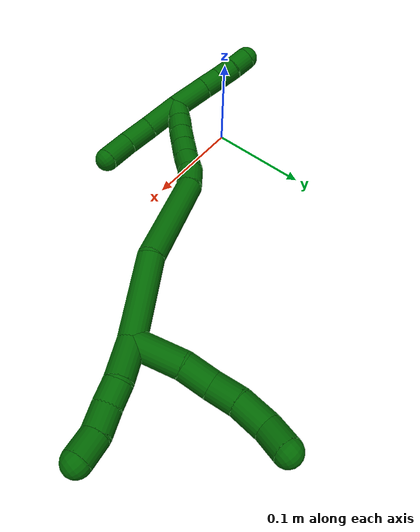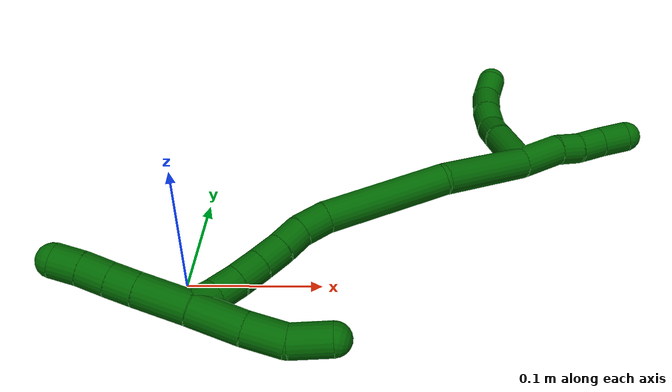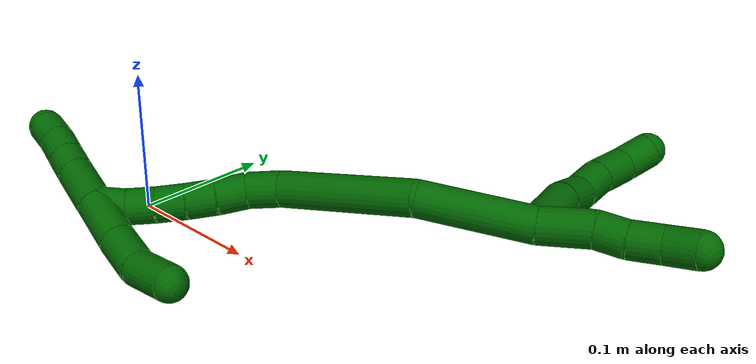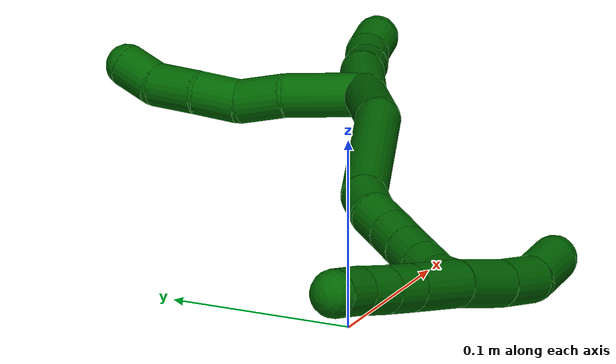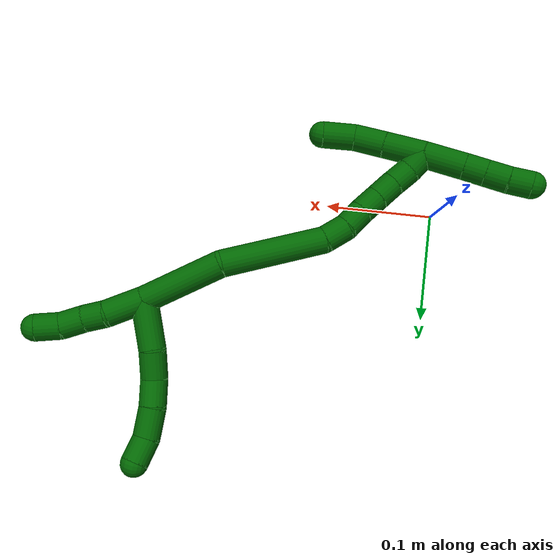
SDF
<sdf version="1.7">
 <world name="default">
  <model name="6">
   <static>0</static>
   <link name="6">
    <collision name="collision-cylinder-e_1_2_8">
     <pose>-0.009755 0.018397 0.009539 -1.09247 -0.439989 0.270229</pose>
     <geometry><cylinder><radius>0.0125</radius><length>0.045808</length></cylinder></geometry>
     <surface>
      <friction><ode><mu>1.16</mu><mu2>1.16</mu2><slip1>0</slip1><slip2>0</slip2></ode></friction>
      <contact><ode><kp>1e+06</kp><kd>1</kd><max_vel>0</max_vel><min_depth>0.001</min_depth></ode></contact>
     </surface>
    </collision>
    <visual name="visual-cylinder-e_1_2_8">
     <pose>-0.009755 0.018397 0.009539 -1.09247 -0.439989 0.270229</pose>
     <geometry><cylinder><radius>0.0125</radius><length>0.045808</length></cylinder></geometry>
     <material><ambient>0 0.392157 0.003922 1</ambient></material>
    </visual>
    <collision name="collision-cylinder-e_2_8_9">
     <pose>-0.027087 0.047462 0.022631 -1.24921 -0.5929 0.433471</pose>
     <geometry><cylinder><radius>0.0125</radius><length>0.027119</length></cylinder></geometry>
     <surface>
      <friction><ode><mu>1.16</mu><mu2>1.16</mu2><slip1>0</slip1><slip2>0</slip2></ode></friction>
      <contact><ode><kp>1e+06</kp><kd>1</kd><max_vel>0</max_vel><min_depth>0.001</min_depth></ode></contact>
     </surface>
    </collision>
    <visual name="visual-cylinder-e_2_8_9">
     <pose>-0.027087 0.047462 0.022631 -1.24921 -0.5929 0.433471</pose>
     <geometry><cylinder><radius>0.0125</radius><length>0.027119</length></cylinder></geometry>
     <material><ambient>0 0.392157 0.003922 1</ambient></material>
    </visual>
    <collision name="collision-cylinder-e_3_9_10">
     <pose>-0.03805 0.069907 0.029619 -1.28711 -0.269285 0.202521</pose>
     <geometry><cylinder><radius>0.0125</radius><length>0.025451</length></cylinder></geometry>
     <surface>
      <friction><ode><mu>1.16</mu><mu2>1.16</mu2><slip1>0</slip1><slip2>0</slip2></ode></friction>
      <contact><ode><kp>1e+06</kp><kd>1</kd><max_vel>0</max_vel><min_depth>0.001</min_depth></ode></contact>
     </surface>
    </collision>
    <visual name="visual-cylinder-e_3_9_10">
     <pose>-0.03805 0.069907 0.029619 -1.28711 -0.269285 0.202521</pose>
     <geometry><cylinder><radius>0.0125</radius><length>0.025451</length></cylinder></geometry>
     <material><ambient>0 0.392157 0.003922 1</ambient></material>
    </visual>
    <collision name="collision-cylinder-e_4_10_11">
     <pose>-0.045901 0.094886 0.034528 -1.45948 -0.324348 0.29062</pose>
     <geometry><cylinder><radius>0.0125</radius><length>0.028029</length></cylinder></geometry>
     <surface>
      <friction><ode><mu>1.16</mu><mu2>1.16</mu2><slip1>0</slip1><slip2>0</slip2></ode></friction>
      <contact><ode><kp>1e+06</kp><kd>1</kd><max_vel>0</max_vel><min_depth>0.001</min_depth></ode></contact>
     </surface>
    </collision>
    <visual name="visual-cylinder-e_4_10_11">
     <pose>-0.045901 0.094886 0.034528 -1.45948 -0.324348 0.29062</pose>
     <geometry><cylinder><radius>0.0125</radius><length>0.028029</length></cylinder></geometry>
     <material><ambient>0 0.392157 0.003922 1</ambient></material>
    </visual>
    <collision name="collision-cylinder-e_5_11_6">
     <pose>-0.050806 0.11985 0.03522 -1.63735 -0.037129 0.039685</pose>
     <geometry><cylinder><radius>0.0125</radius><length>0.023593</length></cylinder></geometry>
     <surface>
      <friction><ode><mu>1.16</mu><mu2>1.16</mu2><slip1>0</slip1><slip2>0</slip2></ode></friction>
      <contact><ode><kp>1e+06</kp><kd>1</kd><max_vel>0</max_vel><min_depth>0.001</min_depth></ode></contact>
     </surface>
    </collision>
    <visual name="visual-cylinder-e_5_11_6">
     <pose>-0.050806 0.11985 0.03522 -1.63735 -0.037129 0.039685</pose>
     <geometry><cylinder><radius>0.0125</radius><length>0.023593</length></cylinder></geometry>
     <material><ambient>0 0.392157 0.003922 1</ambient></material>
    </visual>
    <collision name="collision-cylinder-e_1_2_12">
     <pose>-3e-05 0.011544 -0.013617 -2.4384 -0.001672 0.004557</pose>
     <geometry><cylinder><radius>0.0125</radius><length>0.035704</length></cylinder></geometry>
     <surface>
      <friction><ode><mu>1.16</mu><mu2>1.16</mu2><slip1>0</slip1><slip2>0</slip2></ode></friction>
      <contact><ode><kp>1e+06</kp><kd>1</kd><max_vel>0</max_vel><min_depth>0.001</min_depth></ode></contact>
     </surface>
    </collision>
    <visual name="visual-cylinder-e_1_2_12">
     <pose>-3e-05 0.011544 -0.013617 -2.4384 -0.001672 0.004557</pose>
     <geometry><cylinder><radius>0.0125</radius><length>0.035704</length></cylinder></geometry>
     <material><ambient>0 0.392157 0.003922 1</ambient></material>
    </visual>
    <collision name="collision-cylinder-e_2_12_13">
     <pose>-0.00124 0.027715 -0.036033 -2.65745 -0.118216 0.47046</pose>
     <geometry><cylinder><radius>0.0125</radius><length>0.020022</length></cylinder></geometry>
     <surface>
      <friction><ode><mu>1.16</mu><mu2>1.16</mu2><slip1>0</slip1><slip2>0</slip2></ode></friction>
      <contact><ode><kp>1e+06</kp><kd>1</kd><max_vel>0</max_vel><min_depth>0.001</min_depth></ode></contact>
     </surface>
    </collision>
    <visual name="visual-cylinder-e_2_12_13">
     <pose>-0.00124 0.027715 -0.036033 -2.65745 -0.118216 0.47046</pose>
     <geometry><cylinder><radius>0.0125</radius><length>0.020022</length></cylinder></geometry>
     <material><ambient>0 0.392157 0.003922 1</ambient></material>
    </visual>
    <collision name="collision-cylinder-e_3_13_14">
     <pose>-0.002623 0.038766 -0.053772 -2.51859 -0.018317 0.056876</pose>
     <geometry><cylinder><radius>0.0125</radius><length>0.022023</length></cylinder></geometry>
     <surface>
      <friction><ode><mu>1.16</mu><mu2>1.16</mu2><slip1>0</slip1><slip2>0</slip2></ode></friction>
      <contact><ode><kp>1e+06</kp><kd>1</kd><max_vel>0</max_vel><min_depth>0.001</min_depth></ode></contact>
     </surface>
    </collision>
    <visual name="visual-cylinder-e_3_13_14">
     <pose>-0.002623 0.038766 -0.053772 -2.51859 -0.018317 0.056876</pose>
     <geometry><cylinder><radius>0.0125</radius><length>0.022023</length></cylinder></geometry>
     <material><ambient>0 0.392157 0.003922 1</ambient></material>
    </visual>
    <collision name="collision-cylinder-e_4_14_5">
     <pose>-0.00086 0.049952 -0.072575 -2.69169 0.177455 -0.741581</pose>
     <geometry><cylinder><radius>0.0125</radius><length>0.022252</length></cylinder></geometry>
     <surface>
      <friction><ode><mu>1.16</mu><mu2>1.16</mu2><slip1>0</slip1><slip2>0</slip2></ode></friction>
      <contact><ode><kp>1e+06</kp><kd>1</kd><max_vel>0</max_vel><min_depth>0.001</min_depth></ode></contact>
     </surface>
    </collision>
    <visual name="visual-cylinder-e_4_14_5">
     <pose>-0.00086 0.049952 -0.072575 -2.69169 0.177455 -0.741581</pose>
     <geometry><cylinder><radius>0.0125</radius><length>0.022252</length></cylinder></geometry>
     <material><ambient>0 0.392157 0.003922 1</ambient></material>
    </visual>
    <collision name="collision-cylinder-e_1_2_15">
     <pose>0.007849 -0.023624 0.02937 0.677383 0.205298 0.072543</pose>
     <geometry><cylinder><radius>0.0125</radius><length>0.077002</length></cylinder></geometry>
     <surface>
      <friction><ode><mu>1.16</mu><mu2>1.16</mu2><slip1>0</slip1><slip2>0</slip2></ode></friction>
      <contact><ode><kp>1e+06</kp><kd>1</kd><max_vel>0</max_vel><min_depth>0.001</min_depth></ode></contact>
     </surface>
    </collision>
    <visual name="visual-cylinder-e_1_2_15">
     <pose>0.007849 -0.023624 0.02937 0.677383 0.205298 0.072543</pose>
     <geometry><cylinder><radius>0.0125</radius><length>0.077002</length></cylinder></geometry>
     <material><ambient>0 0.392157 0.003922 1</ambient></material>
    </visual>
    <collision name="collision-cylinder-e_2_15_16">
     <pose>0.011062 -0.074629 0.098204 0.606583 -0.096215 -0.030131</pose>
     <geometry><cylinder><radius>0.0125</radius><length>0.096511</length></cylinder></geometry>
     <surface>
      <friction><ode><mu>1.16</mu><mu2>1.16</mu2><slip1>0</slip1><slip2>0</slip2></ode></friction>
      <contact><ode><kp>1e+06</kp><kd>1</kd><max_vel>0</max_vel><min_depth>0.001</min_depth></ode></contact>
     </surface>
    </collision>
    <visual name="visual-cylinder-e_2_15_16">
     <pose>0.011062 -0.074629 0.098204 0.606583 -0.096215 -0.030131</pose>
     <geometry><cylinder><radius>0.0125</radius><length>0.096511</length></cylinder></geometry>
     <material><ambient>0 0.392157 0.003922 1</ambient></material>
    </visual>
    <collision name="collision-cylinder-e_3_16_17">
     <pose>0.006773 -0.111033 0.14526 0.871233 0.029445 0.013706</pose>
     <geometry><cylinder><radius>0.0125</radius><length>0.023594</length></cylinder></geometry>
     <surface>
      <friction><ode><mu>1.16</mu><mu2>1.16</mu2><slip1>0</slip1><slip2>0</slip2></ode></friction>
      <contact><ode><kp>1e+06</kp><kd>1</kd><max_vel>0</max_vel><min_depth>0.001</min_depth></ode></contact>
     </surface>
    </collision>
    <visual name="visual-cylinder-e_3_16_17">
     <pose>0.006773 -0.111033 0.14526 0.871233 0.029445 0.013706</pose>
     <geometry><cylinder><radius>0.0125</radius><length>0.023594</length></cylinder></geometry>
     <material><ambient>0 0.392157 0.003922 1</ambient></material>
    </visual>
    <collision name="collision-cylinder-e_4_17_18">
     <pose>0.007721 -0.129573 0.157273 1.13601 0.057163 0.036485</pose>
     <geometry><cylinder><radius>0.0125</radius><length>0.021022</length></cylinder></geometry>
     <surface>
      <friction><ode><mu>1.16</mu><mu2>1.16</mu2><slip1>0</slip1><slip2>0</slip2></ode></friction>
      <contact><ode><kp>1e+06</kp><kd>1</kd><max_vel>0</max_vel><min_depth>0.001</min_depth></ode></contact>
     </surface>
    </collision>
    <visual name="visual-cylinder-e_4_17_18">
     <pose>0.007721 -0.129573 0.157273 1.13601 0.057163 0.036485</pose>
     <geometry><cylinder><radius>0.0125</radius><length>0.021022</length></cylinder></geometry>
     <material><ambient>0 0.392157 0.003922 1</ambient></material>
    </visual>
    <collision name="collision-cylinder-e_5_18_19">
     <pose>0.0091 -0.148123 0.166763 1.05932 0.074967 0.043904</pose>
     <geometry><cylinder><radius>0.0125</radius><length>0.020775</length></cylinder></geometry>
     <surface>
      <friction><ode><mu>1.16</mu><mu2>1.16</mu2><slip1>0</slip1><slip2>0</slip2></ode></friction>
      <contact><ode><kp>1e+06</kp><kd>1</kd><max_vel>0</max_vel><min_depth>0.001</min_depth></ode></contact>
     </surface>
    </collision>
    <visual name="visual-cylinder-e_5_18_19">
     <pose>0.0091 -0.148123 0.166763 1.05932 0.074967 0.043904</pose>
     <geometry><cylinder><radius>0.0125</radius><length>0.020775</length></cylinder></geometry>
     <material><ambient>0 0.392157 0.003922 1</ambient></material>
    </visual>
    <collision name="collision-cylinder-e_6_19_20">
     <pose>0.010986 -0.166056 0.176936 1.05021 0.107623 0.062392</pose>
     <geometry><cylinder><radius>0.0125</radius><length>0.020638</length></cylinder></geometry>
     <surface>
      <friction><ode><mu>1.16</mu><mu2>1.16</mu2><slip1>0</slip1><slip2>0</slip2></ode></friction>
      <contact><ode><kp>1e+06</kp><kd>1</kd><max_vel>0</max_vel><min_depth>0.001</min_depth></ode></contact>
     </surface>
    </collision>
    <visual name="visual-cylinder-e_6_19_20">
     <pose>0.010986 -0.166056 0.176936 1.05021 0.107623 0.062392</pose>
     <geometry><cylinder><radius>0.0125</radius><length>0.020638</length></cylinder></geometry>
     <material><ambient>0 0.392157 0.003922 1</ambient></material>
    </visual>
    <collision name="collision-cylinder-e_7_20_21">
     <pose>0.01339 -0.183439 0.187527 0.996597 0.127508 0.069443</pose>
     <geometry><cylinder><radius>0.0125</radius><length>0.020372</length></cylinder></geometry>
     <surface>
      <friction><ode><mu>1.16</mu><mu2>1.16</mu2><slip1>0</slip1><slip2>0</slip2></ode></friction>
      <contact><ode><kp>1e+06</kp><kd>1</kd><max_vel>0</max_vel><min_depth>0.001</min_depth></ode></contact>
     </surface>
    </collision>
    <visual name="visual-cylinder-e_7_20_21">
     <pose>0.01339 -0.183439 0.187527 0.996597 0.127508 0.069443</pose>
     <geometry><cylinder><radius>0.0125</radius><length>0.020372</length></cylinder></geometry>
     <material><ambient>0 0.392157 0.003922 1</ambient></material>
    </visual>
    <collision name="collision-cylinder-e_8_21_1">
     <pose>0.018187 -0.199982 0.197876 1.02811 0.356202 0.202603</pose>
     <geometry><cylinder><radius>0.0125</radius><length>0.020087</length></cylinder></geometry>
     <surface>
      <friction><ode><mu>1.16</mu><mu2>1.16</mu2><slip1>0</slip1><slip2>0</slip2></ode></friction>
      <contact><ode><kp>1e+06</kp><kd>1</kd><max_vel>0</max_vel><min_depth>0.001</min_depth></ode></contact>
     </surface>
    </collision>
    <visual name="visual-cylinder-e_8_21_1">
     <pose>0.018187 -0.199982 0.197876 1.02811 0.356202 0.202603</pose>
     <geometry><cylinder><radius>0.0125</radius><length>0.020087</length></cylinder></geometry>
     <material><ambient>0 0.392157 0.003922 1</ambient></material>
    </visual>
    <collision name="collision-cylinder-e_1_1_22">
     <pose>0.020365 -0.209487 0.183659 3.06605 -0.069119 -1.48201</pose>
     <geometry><cylinder><radius>0.0125</radius><length>0.038356</length></cylinder></geometry>
     <surface>
      <friction><ode><mu>1.16</mu><mu2>1.16</mu2><slip1>0</slip1><slip2>0</slip2></ode></friction>
      <contact><ode><kp>1e+06</kp><kd>1</kd><max_vel>0</max_vel><min_depth>0.001</min_depth></ode></contact>
     </surface>
    </collision>
    <visual name="visual-cylinder-e_1_1_22">
     <pose>0.020365 -0.209487 0.183659 3.06605 -0.069119 -1.48201</pose>
     <geometry><cylinder><radius>0.0125</radius><length>0.038356</length></cylinder></geometry>
     <material><ambient>0 0.392157 0.003922 1</ambient></material>
    </visual>
    <collision name="collision-cylinder-e_2_22_23">
     <pose>0.018815 -0.211276 0.149455 3.11873 -0.014919 -1.15633</pose>
     <geometry><cylinder><radius>0.0125</radius><length>0.030264</length></cylinder></geometry>
     <surface>
      <friction><ode><mu>1.16</mu><mu2>1.16</mu2><slip1>0</slip1><slip2>0</slip2></ode></friction>
      <contact><ode><kp>1e+06</kp><kd>1</kd><max_vel>0</max_vel><min_depth>0.001</min_depth></ode></contact>
     </surface>
    </collision>
    <visual name="visual-cylinder-e_2_22_23">
     <pose>0.018815 -0.211276 0.149455 3.11873 -0.014919 -1.15633</pose>
     <geometry><cylinder><radius>0.0125</radius><length>0.030264</length></cylinder></geometry>
     <material><ambient>0 0.392157 0.003922 1</ambient></material>
    </visual>
    <collision name="collision-cylinder-e_3_23_4">
     <pose>0.020656 -0.207418 0.119354 -2.86788 0.132094 -0.895488</pose>
     <geometry><cylinder><radius>0.0125</radius><length>0.03138</length></cylinder></geometry>
     <surface>
      <friction><ode><mu>1.16</mu><mu2>1.16</mu2><slip1>0</slip1><slip2>0</slip2></ode></friction>
      <contact><ode><kp>1e+06</kp><kd>1</kd><max_vel>0</max_vel><min_depth>0.001</min_depth></ode></contact>
     </surface>
    </collision>
    <visual name="visual-cylinder-e_3_23_4">
     <pose>0.020656 -0.207418 0.119354 -2.86788 0.132094 -0.895488</pose>
     <geometry><cylinder><radius>0.0125</radius><length>0.03138</length></cylinder></geometry>
     <material><ambient>0 0.392157 0.003922 1</ambient></material>
    </visual>
    <collision name="collision-cylinder-e_1_1_24">
     <pose>0.021842 -0.206599 0.221908 -0.07517 0.007926 -0.000298</pose>
     <geometry><cylinder><radius>0.0125</radius><length>0.038451</length></cylinder></geometry>
     <surface>
      <friction><ode><mu>1.16</mu><mu2>1.16</mu2><slip1>0</slip1><slip2>0</slip2></ode></friction>
      <contact><ode><kp>1e+06</kp><kd>1</kd><max_vel>0</max_vel><min_depth>0.001</min_depth></ode></contact>
     </surface>
    </collision>
    <visual name="visual-cylinder-e_1_1_24">
     <pose>0.021842 -0.206599 0.221908 -0.07517 0.007926 -0.000298</pose>
     <geometry><cylinder><radius>0.0125</radius><length>0.038451</length></cylinder></geometry>
     <material><ambient>0 0.392157 0.003922 1</ambient></material>
    </visual>
    <collision name="collision-cylinder-e_2_24_25">
     <pose>0.022049 -0.204217 0.251074 -0.093611 0.005453 -0.000255</pose>
     <geometry><cylinder><radius>0.0125</radius><length>0.02008</length></cylinder></geometry>
     <surface>
      <friction><ode><mu>1.16</mu><mu2>1.16</mu2><slip1>0</slip1><slip2>0</slip2></ode></friction>
      <contact><ode><kp>1e+06</kp><kd>1</kd><max_vel>0</max_vel><min_depth>0.001</min_depth></ode></contact>
     </surface>
    </collision>
    <visual name="visual-cylinder-e_2_24_25">
     <pose>0.022049 -0.204217 0.251074 -0.093611 0.005453 -0.000255</pose>
     <geometry><cylinder><radius>0.0125</radius><length>0.02008</length></cylinder></geometry>
     <material><ambient>0 0.392157 0.003922 1</ambient></material>
    </visual>
    <collision name="collision-cylinder-e_3_25_26">
     <pose>0.02241 -0.202144 0.271637 -0.106893 0.028783 -0.00154</pose>
     <geometry><cylinder><radius>0.0125</radius><length>0.021264</length></cylinder></geometry>
     <surface>
      <friction><ode><mu>1.16</mu><mu2>1.16</mu2><slip1>0</slip1><slip2>0</slip2></ode></friction>
      <contact><ode><kp>1e+06</kp><kd>1</kd><max_vel>0</max_vel><min_depth>0.001</min_depth></ode></contact>
     </surface>
    </collision>
    <visual name="visual-cylinder-e_3_25_26">
     <pose>0.02241 -0.202144 0.271637 -0.106893 0.028783 -0.00154</pose>
     <geometry><cylinder><radius>0.0125</radius><length>0.021264</length></cylinder></geometry>
     <material><ambient>0 0.392157 0.003922 1</ambient></material>
    </visual>
    <collision name="collision-cylinder-e_4_26_3">
     <pose>0.023063 -0.200907 0.2923 -0.01024 0.034382 -0.000176</pose>
     <geometry><cylinder><radius>0.0125</radius><length>0.020205</length></cylinder></geometry>
     <surface>
      <friction><ode><mu>1.16</mu><mu2>1.16</mu2><slip1>0</slip1><slip2>0</slip2></ode></friction>
      <contact><ode><kp>1e+06</kp><kd>1</kd><max_vel>0</max_vel><min_depth>0.001</min_depth></ode></contact>
     </surface>
    </collision>
    <visual name="visual-cylinder-e_4_26_3">
     <pose>0.023063 -0.200907 0.2923 -0.01024 0.034382 -0.000176</pose>
     <geometry><cylinder><radius>0.0125</radius><length>0.020205</length></cylinder></geometry>
     <material><ambient>0 0.392157 0.003922 1</ambient></material>
    </visual>
    <collision name="collision-sphere-3">
     <pose>0.02341 -0.200804 0.302396 0 -0 0</pose>
     <geometry><sphere><radius>0.0125</radius></sphere></geometry>
     <surface>
      <friction><ode><mu>1.16</mu><mu2>1.16</mu2><slip1>0</slip1><slip2>0</slip2></ode></friction>
      <contact><ode><kp>1e+06</kp><kd>1</kd><max_vel>0</max_vel><min_depth>0.001</min_depth></ode></contact>
     </surface>
    </collision>
    <visual name="visual-sphere-3">
     <pose>0.02341 -0.200804 0.302396 0 -0 0</pose>
     <geometry><sphere><radius>0.0125</radius></sphere></geometry>
     <material><ambient>0 0.392157 0.003922 1</ambient></material>
    </visual>
    <collision name="collision-sphere-26">
     <pose>0.022716 -0.20101 0.282203 0 -0 0</pose>
     <geometry><sphere><radius>0.0125</radius></sphere></geometry>
     <surface>
      <friction><ode><mu>1.16</mu><mu2>1.16</mu2><slip1>0</slip1><slip2>0</slip2></ode></friction>
      <contact><ode><kp>1e+06</kp><kd>1</kd><max_vel>0</max_vel><min_depth>0.001</min_depth></ode></contact>
     </surface>
    </collision>
    <visual name="visual-sphere-26">
     <pose>0.022716 -0.20101 0.282203 0 -0 0</pose>
     <geometry><sphere><radius>0.0125</radius></sphere></geometry>
     <material><ambient>0 0.392157 0.003922 1</ambient></material>
    </visual>
    <collision name="collision-sphere-25">
     <pose>0.022104 -0.203278 0.26107 0 -0 0</pose>
     <geometry><sphere><radius>0.0125</radius></sphere></geometry>
     <surface>
      <friction><ode><mu>1.16</mu><mu2>1.16</mu2><slip1>0</slip1><slip2>0</slip2></ode></friction>
      <contact><ode><kp>1e+06</kp><kd>1</kd><max_vel>0</max_vel><min_depth>0.001</min_depth></ode></contact>
     </surface>
    </collision>
    <visual name="visual-sphere-25">
     <pose>0.022104 -0.203278 0.26107 0 -0 0</pose>
     <geometry><sphere><radius>0.0125</radius></sphere></geometry>
     <material><ambient>0 0.392157 0.003922 1</ambient></material>
    </visual>
    <collision name="collision-sphere-24">
     <pose>0.021994 -0.205155 0.241078 0 -0 0</pose>
     <geometry><sphere><radius>0.0125</radius></sphere></geometry>
     <surface>
      <friction><ode><mu>1.16</mu><mu2>1.16</mu2><slip1>0</slip1><slip2>0</slip2></ode></friction>
      <contact><ode><kp>1e+06</kp><kd>1</kd><max_vel>0</max_vel><min_depth>0.001</min_depth></ode></contact>
     </surface>
    </collision>
    <visual name="visual-sphere-24">
     <pose>0.021994 -0.205155 0.241078 0 -0 0</pose>
     <geometry><sphere><radius>0.0125</radius></sphere></geometry>
     <material><ambient>0 0.392157 0.003922 1</ambient></material>
    </visual>
    <collision name="collision-sphere-4">
     <pose>0.022722 -0.203214 0.10438 0 -0 0</pose>
     <geometry><sphere><radius>0.0125</radius></sphere></geometry>
     <surface>
      <friction><ode><mu>1.16</mu><mu2>1.16</mu2><slip1>0</slip1><slip2>0</slip2></ode></friction>
      <contact><ode><kp>1e+06</kp><kd>1</kd><max_vel>0</max_vel><min_depth>0.001</min_depth></ode></contact>
     </surface>
    </collision>
    <visual name="visual-sphere-4">
     <pose>0.022722 -0.203214 0.10438 0 -0 0</pose>
     <geometry><sphere><radius>0.0125</radius></sphere></geometry>
     <material><ambient>0 0.392157 0.003922 1</ambient></material>
    </visual>
    <collision name="collision-sphere-23">
     <pose>0.018589 -0.211622 0.134329 0 -0 0</pose>
     <geometry><sphere><radius>0.0125</radius></sphere></geometry>
     <surface>
      <friction><ode><mu>1.16</mu><mu2>1.16</mu2><slip1>0</slip1><slip2>0</slip2></ode></friction>
      <contact><ode><kp>1e+06</kp><kd>1</kd><max_vel>0</max_vel><min_depth>0.001</min_depth></ode></contact>
     </surface>
    </collision>
    <visual name="visual-sphere-23">
     <pose>0.018589 -0.211622 0.134329 0 -0 0</pose>
     <geometry><sphere><radius>0.0125</radius></sphere></geometry>
     <material><ambient>0 0.392157 0.003922 1</ambient></material>
    </visual>
    <collision name="collision-sphere-22">
     <pose>0.019041 -0.21093 0.164581 0 -0 0</pose>
     <geometry><sphere><radius>0.0125</radius></sphere></geometry>
     <surface>
      <friction><ode><mu>1.16</mu><mu2>1.16</mu2><slip1>0</slip1><slip2>0</slip2></ode></friction>
      <contact><ode><kp>1e+06</kp><kd>1</kd><max_vel>0</max_vel><min_depth>0.001</min_depth></ode></contact>
     </surface>
    </collision>
    <visual name="visual-sphere-22">
     <pose>0.019041 -0.21093 0.164581 0 -0 0</pose>
     <geometry><sphere><radius>0.0125</radius></sphere></geometry>
     <material><ambient>0 0.392157 0.003922 1</ambient></material>
    </visual>
    <collision name="collision-sphere-1">
     <pose>0.02169 -0.208043 0.202737 0 -0 0</pose>
     <geometry><sphere><radius>0.0125</radius></sphere></geometry>
     <surface>
      <friction><ode><mu>1.16</mu><mu2>1.16</mu2><slip1>0</slip1><slip2>0</slip2></ode></friction>
      <contact><ode><kp>1e+06</kp><kd>1</kd><max_vel>0</max_vel><min_depth>0.001</min_depth></ode></contact>
     </surface>
    </collision>
    <visual name="visual-sphere-1">
     <pose>0.02169 -0.208043 0.202737 0 -0 0</pose>
     <geometry><sphere><radius>0.0125</radius></sphere></geometry>
     <material><ambient>0 0.392157 0.003922 1</ambient></material>
    </visual>
    <collision name="collision-sphere-21">
     <pose>0.014685 -0.191922 0.193014 0 -0 0</pose>
     <geometry><sphere><radius>0.0125</radius></sphere></geometry>
     <surface>
      <friction><ode><mu>1.16</mu><mu2>1.16</mu2><slip1>0</slip1><slip2>0</slip2></ode></friction>
      <contact><ode><kp>1e+06</kp><kd>1</kd><max_vel>0</max_vel><min_depth>0.001</min_depth></ode></contact>
     </surface>
    </collision>
    <visual name="visual-sphere-21">
     <pose>0.014685 -0.191922 0.193014 0 -0 0</pose>
     <geometry><sphere><radius>0.0125</radius></sphere></geometry>
     <material><ambient>0 0.392157 0.003922 1</ambient></material>
    </visual>
    <collision name="collision-sphere-6">
     <pose>-0.051244 0.131612 0.034436 0 -0 0</pose>
     <geometry><sphere><radius>0.0125</radius></sphere></geometry>
     <surface>
      <friction><ode><mu>1.16</mu><mu2>1.16</mu2><slip1>0</slip1><slip2>0</slip2></ode></friction>
      <contact><ode><kp>1e+06</kp><kd>1</kd><max_vel>0</max_vel><min_depth>0.001</min_depth></ode></contact>
     </surface>
    </collision>
    <visual name="visual-sphere-6">
     <pose>-0.051244 0.131612 0.034436 0 -0 0</pose>
     <geometry><sphere><radius>0.0125</radius></sphere></geometry>
     <material><ambient>0 0.392157 0.003922 1</ambient></material>
    </visual>
    <collision name="collision-sphere-11">
     <pose>-0.050368 0.108087 0.036004 0 -0 0</pose>
     <geometry><sphere><radius>0.0125</radius></sphere></geometry>
     <surface>
      <friction><ode><mu>1.16</mu><mu2>1.16</mu2><slip1>0</slip1><slip2>0</slip2></ode></friction>
      <contact><ode><kp>1e+06</kp><kd>1</kd><max_vel>0</max_vel><min_depth>0.001</min_depth></ode></contact>
     </surface>
    </collision>
    <visual name="visual-sphere-11">
     <pose>-0.050368 0.108087 0.036004 0 -0 0</pose>
     <geometry><sphere><radius>0.0125</radius></sphere></geometry>
     <material><ambient>0 0.392157 0.003922 1</ambient></material>
    </visual>
    <collision name="collision-sphere-10">
     <pose>-0.041435 0.081684 0.033053 0 -0 0</pose>
     <geometry><sphere><radius>0.0125</radius></sphere></geometry>
     <surface>
      <friction><ode><mu>1.16</mu><mu2>1.16</mu2><slip1>0</slip1><slip2>0</slip2></ode></friction>
      <contact><ode><kp>1e+06</kp><kd>1</kd><max_vel>0</max_vel><min_depth>0.001</min_depth></ode></contact>
     </surface>
    </collision>
    <visual name="visual-sphere-10">
     <pose>-0.041435 0.081684 0.033053 0 -0 0</pose>
     <geometry><sphere><radius>0.0125</radius></sphere></geometry>
     <material><ambient>0 0.392157 0.003922 1</ambient></material>
    </visual>
    <collision name="collision-sphere-9">
     <pose>-0.034664 0.058131 0.026186 0 -0 0</pose>
     <geometry><sphere><radius>0.0125</radius></sphere></geometry>
     <surface>
      <friction><ode><mu>1.16</mu><mu2>1.16</mu2><slip1>0</slip1><slip2>0</slip2></ode></friction>
      <contact><ode><kp>1e+06</kp><kd>1</kd><max_vel>0</max_vel><min_depth>0.001</min_depth></ode></contact>
     </surface>
    </collision>
    <visual name="visual-sphere-9">
     <pose>-0.034664 0.058131 0.026186 0 -0 0</pose>
     <geometry><sphere><radius>0.0125</radius></sphere></geometry>
     <material><ambient>0 0.392157 0.003922 1</ambient></material>
    </visual>
    <collision name="collision-sphere-2">
     <geometry><sphere><radius>0.0125</radius></sphere></geometry>
     <surface>
      <friction><ode><mu>1.16</mu><mu2>1.16</mu2><slip1>0</slip1><slip2>0</slip2></ode></friction>
      <contact><ode><kp>1e+06</kp><kd>1</kd><max_vel>0</max_vel><min_depth>0.001</min_depth></ode></contact>
     </surface>
    </collision>
    <visual name="visual-sphere-2">
     <geometry><sphere><radius>0.0125</radius></sphere></geometry>
     <material><ambient>0 0.392157 0.003922 1</ambient></material>
    </visual>
    <collision name="collision-sphere-19">
     <pose>0.009878 -0.157155 0.171833 0 -0 0</pose>
     <geometry><sphere><radius>0.0125</radius></sphere></geometry>
     <surface>
      <friction><ode><mu>1.16</mu><mu2>1.16</mu2><slip1>0</slip1><slip2>0</slip2></ode></friction>
      <contact><ode><kp>1e+06</kp><kd>1</kd><max_vel>0</max_vel><min_depth>0.001</min_depth></ode></contact>
     </surface>
    </collision>
    <visual name="visual-sphere-19">
     <pose>0.009878 -0.157155 0.171833 0 -0 0</pose>
     <geometry><sphere><radius>0.0125</radius></sphere></geometry>
     <material><ambient>0 0.392157 0.003922 1</ambient></material>
    </visual>
    <collision name="collision-sphere-8">
     <pose>-0.019511 0.036793 0.019077 0 -0 0</pose>
     <geometry><sphere><radius>0.0125</radius></sphere></geometry>
     <surface>
      <friction><ode><mu>1.16</mu><mu2>1.16</mu2><slip1>0</slip1><slip2>0</slip2></ode></friction>
      <contact><ode><kp>1e+06</kp><kd>1</kd><max_vel>0</max_vel><min_depth>0.001</min_depth></ode></contact>
     </surface>
    </collision>
    <visual name="visual-sphere-8">
     <pose>-0.019511 0.036793 0.019077 0 -0 0</pose>
     <geometry><sphere><radius>0.0125</radius></sphere></geometry>
     <material><ambient>0 0.392157 0.003922 1</ambient></material>
    </visual>
    <collision name="collision-sphere-12">
     <pose>-6e-05 0.023088 -0.027234 0 -0 0</pose>
     <geometry><sphere><radius>0.0125</radius></sphere></geometry>
     <surface>
      <friction><ode><mu>1.16</mu><mu2>1.16</mu2><slip1>0</slip1><slip2>0</slip2></ode></friction>
      <contact><ode><kp>1e+06</kp><kd>1</kd><max_vel>0</max_vel><min_depth>0.001</min_depth></ode></contact>
     </surface>
    </collision>
    <visual name="visual-sphere-12">
     <pose>-6e-05 0.023088 -0.027234 0 -0 0</pose>
     <geometry><sphere><radius>0.0125</radius></sphere></geometry>
     <material><ambient>0 0.392157 0.003922 1</ambient></material>
    </visual>
    <collision name="collision-sphere-13">
     <pose>-0.002421 0.032342 -0.044831 0 -0 0</pose>
     <geometry><sphere><radius>0.0125</radius></sphere></geometry>
     <surface>
      <friction><ode><mu>1.16</mu><mu2>1.16</mu2><slip1>0</slip1><slip2>0</slip2></ode></friction>
      <contact><ode><kp>1e+06</kp><kd>1</kd><max_vel>0</max_vel><min_depth>0.001</min_depth></ode></contact>
     </surface>
    </collision>
    <visual name="visual-sphere-13">
     <pose>-0.002421 0.032342 -0.044831 0 -0 0</pose>
     <geometry><sphere><radius>0.0125</radius></sphere></geometry>
     <material><ambient>0 0.392157 0.003922 1</ambient></material>
    </visual>
    <collision name="collision-sphere-14">
     <pose>-0.002824 0.04519 -0.062714 0 -0 0</pose>
     <geometry><sphere><radius>0.0125</radius></sphere></geometry>
     <surface>
      <friction><ode><mu>1.16</mu><mu2>1.16</mu2><slip1>0</slip1><slip2>0</slip2></ode></friction>
      <contact><ode><kp>1e+06</kp><kd>1</kd><max_vel>0</max_vel><min_depth>0.001</min_depth></ode></contact>
     </surface>
    </collision>
    <visual name="visual-sphere-14">
     <pose>-0.002824 0.04519 -0.062714 0 -0 0</pose>
     <geometry><sphere><radius>0.0125</radius></sphere></geometry>
     <material><ambient>0 0.392157 0.003922 1</ambient></material>
    </visual>
    <collision name="collision-sphere-5">
     <pose>0.001104 0.054715 -0.082436 0 -0 0</pose>
     <geometry><sphere><radius>0.0125</radius></sphere></geometry>
     <surface>
      <friction><ode><mu>1.16</mu><mu2>1.16</mu2><slip1>0</slip1><slip2>0</slip2></ode></friction>
      <contact><ode><kp>1e+06</kp><kd>1</kd><max_vel>0</max_vel><min_depth>0.001</min_depth></ode></contact>
     </surface>
    </collision>
    <visual name="visual-sphere-5">
     <pose>0.001104 0.054715 -0.082436 0 -0 0</pose>
     <geometry><sphere><radius>0.0125</radius></sphere></geometry>
     <material><ambient>0 0.392157 0.003922 1</ambient></material>
    </visual>
    <collision name="collision-sphere-15">
     <pose>0.015698 -0.047248 0.058741 0 -0 0</pose>
     <geometry><sphere><radius>0.0125</radius></sphere></geometry>
     <surface>
      <friction><ode><mu>1.16</mu><mu2>1.16</mu2><slip1>0</slip1><slip2>0</slip2></ode></friction>
      <contact><ode><kp>1e+06</kp><kd>1</kd><max_vel>0</max_vel><min_depth>0.001</min_depth></ode></contact>
     </surface>
    </collision>
    <visual name="visual-sphere-15">
     <pose>0.015698 -0.047248 0.058741 0 -0 0</pose>
     <geometry><sphere><radius>0.0125</radius></sphere></geometry>
     <material><ambient>0 0.392157 0.003922 1</ambient></material>
    </visual>
    <collision name="collision-sphere-16">
     <pose>0.006426 -0.102011 0.137668 0 -0 0</pose>
     <geometry><sphere><radius>0.0125</radius></sphere></geometry>
     <surface>
      <friction><ode><mu>1.16</mu><mu2>1.16</mu2><slip1>0</slip1><slip2>0</slip2></ode></friction>
      <contact><ode><kp>1e+06</kp><kd>1</kd><max_vel>0</max_vel><min_depth>0.001</min_depth></ode></contact>
     </surface>
    </collision>
    <visual name="visual-sphere-16">
     <pose>0.006426 -0.102011 0.137668 0 -0 0</pose>
     <geometry><sphere><radius>0.0125</radius></sphere></geometry>
     <material><ambient>0 0.392157 0.003922 1</ambient></material>
    </visual>
    <collision name="collision-sphere-17">
     <pose>0.007121 -0.120055 0.152853 0 -0 0</pose>
     <geometry><sphere><radius>0.0125</radius></sphere></geometry>
     <surface>
      <friction><ode><mu>1.16</mu><mu2>1.16</mu2><slip1>0</slip1><slip2>0</slip2></ode></friction>
      <contact><ode><kp>1e+06</kp><kd>1</kd><max_vel>0</max_vel><min_depth>0.001</min_depth></ode></contact>
     </surface>
    </collision>
    <visual name="visual-sphere-17">
     <pose>0.007121 -0.120055 0.152853 0 -0 0</pose>
     <geometry><sphere><radius>0.0125</radius></sphere></geometry>
     <material><ambient>0 0.392157 0.003922 1</ambient></material>
    </visual>
    <collision name="collision-sphere-18">
     <pose>0.008322 -0.13909 0.161693 0 -0 0</pose>
     <geometry><sphere><radius>0.0125</radius></sphere></geometry>
     <surface>
      <friction><ode><mu>1.16</mu><mu2>1.16</mu2><slip1>0</slip1><slip2>0</slip2></ode></friction>
      <contact><ode><kp>1e+06</kp><kd>1</kd><max_vel>0</max_vel><min_depth>0.001</min_depth></ode></contact>
     </surface>
    </collision>
    <visual name="visual-sphere-18">
     <pose>0.008322 -0.13909 0.161693 0 -0 0</pose>
     <geometry><sphere><radius>0.0125</radius></sphere></geometry>
     <material><ambient>0 0.392157 0.003922 1</ambient></material>
    </visual>
    <collision name="collision-sphere-20">
     <pose>0.012094 -0.174956 0.182039 0 -0 0</pose>
     <geometry><sphere><radius>0.0125</radius></sphere></geometry>
     <surface>
      <friction><ode><mu>1.16</mu><mu2>1.16</mu2><slip1>0</slip1><slip2>0</slip2></ode></friction>
      <contact><ode><kp>1e+06</kp><kd>1</kd><max_vel>0</max_vel><min_depth>0.001</min_depth></ode></contact>
     </surface>
    </collision>
    <visual name="visual-sphere-20">
     <pose>0.012094 -0.174956 0.182039 0 -0 0</pose>
     <geometry><sphere><radius>0.0125</radius></sphere></geometry>
     <material><ambient>0 0.392157 0.003922 1</ambient></material>
    </visual>
    <inertial>
     <pose>0.003378 -0.076847 0.098066 0 -0 0</pose>
     <mass>0.75</mass>
     <inertia>
      <ixx>0.000161</ixx>
      <ixy>0</ixy>
      <ixz>0</ixz>
      <iyy>0.000102</iyy>
      <iyz>0</iyz>
      <izz>7.1e-05</izz>
     </inertia>
    </inertial>
   </link>
   <pose>0.257224 0.109941 0.039722 1.09346 -1.19485 -1.3031</pose>
  </model>
 </world>
</sdf>
